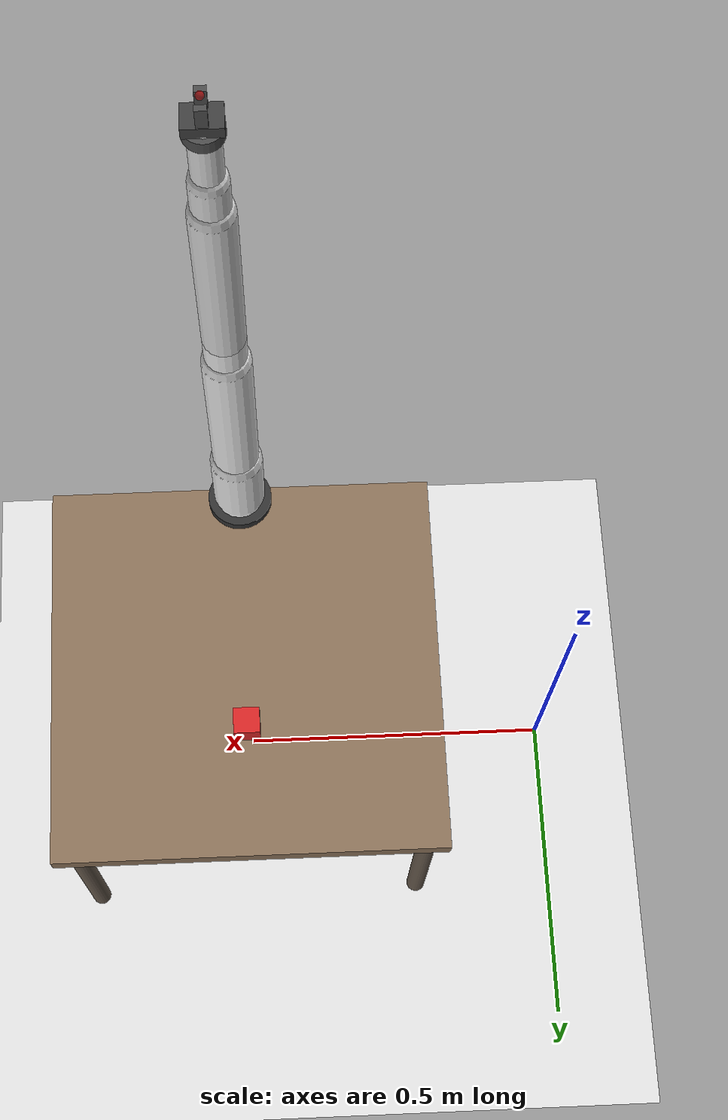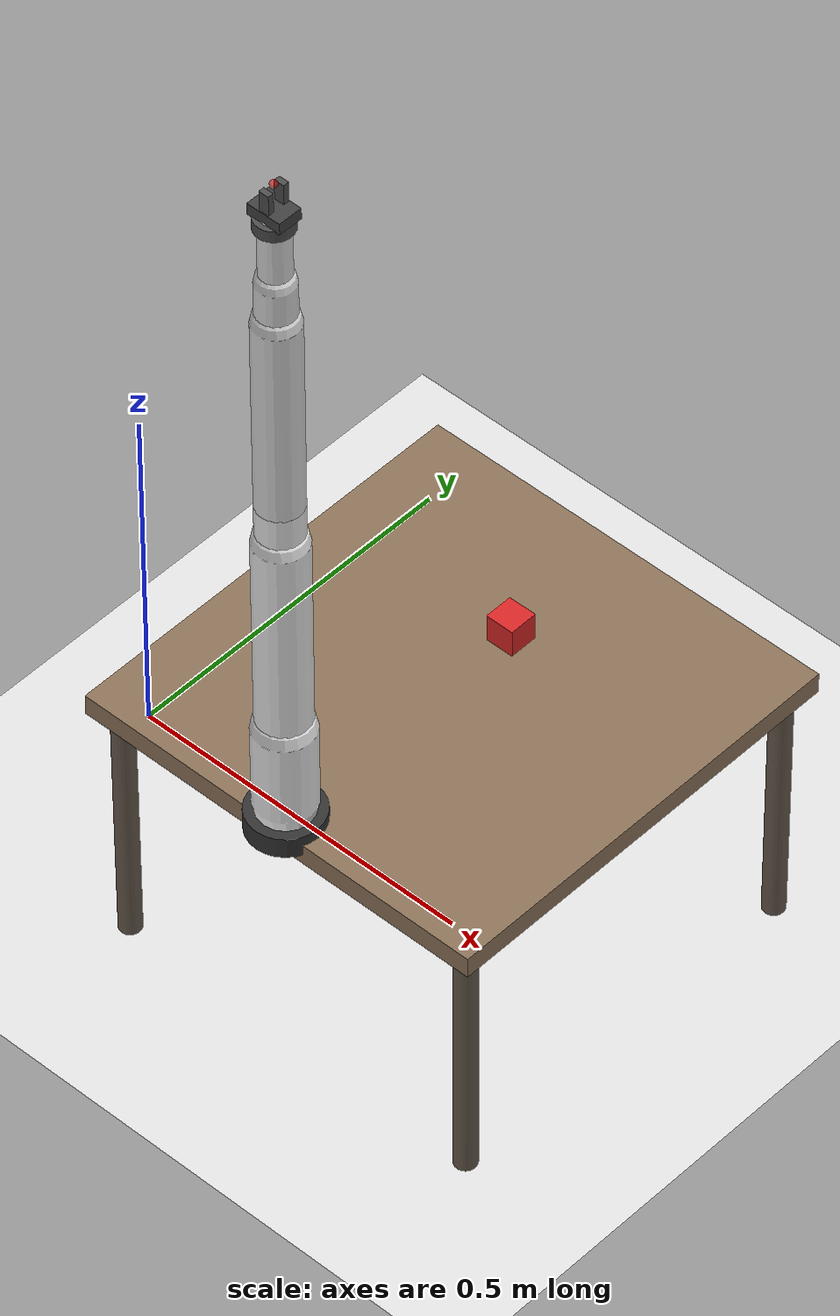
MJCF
<mujoco model="robollm_tabletop">
  <compiler angle="radian" autolimits="true"/>
  <option timestep="0.002" gravity="0 0 -9.81" integrator="implicitfast"/>

  <default>
    <default class="arm">
      <joint damping="10" armature="0.1"/>
      <geom type="capsule" condim="4" friction="1 0.005 0.0001" rgba="0.92 0.92 0.92 1"/>
    </default>
    <default class="finger">
      <joint damping="5" armature="0.01"/>
      <geom type="box" condim="4" friction="1 0.5 0.01" rgba="0.3 0.3 0.3 1"/>
    </default>
    <default class="object">
      <geom condim="4" friction="1 0.5 0.01"
            solimp="0.95 0.95 0.01" solref="0.01 1"/>
    </default>
  </default>

  <asset>
    <texture name="grid" type="2d" builtin="checker"
             rgb1="0.85 0.85 0.85" rgb2="0.92 0.92 0.92"
             width="512" height="512"/>
    <material name="grid" texture="grid" texrepeat="8 8" reflectance="0.05"/>
    <material name="table_mat" rgba="0.55 0.45 0.35 1" specular="0.1"/>
  </asset>

  <worldbody>
    <!-- Lighting -->
    <light pos="0.5 0 1.5" dir="0 0 -1" directional="true" diffuse="0.8 0.8 0.8"/>
    <light pos="0.8 0.5 1.0" diffuse="0.3 0.3 0.3"/>

    <!-- Floor -->
    <geom name="floor" type="plane" size="2 2 0.01" material="grid"/>

    <!-- Table: 60×60 cm, 40 cm tall -->
    <body name="table" pos="0.5 0 0.4">
      <geom name="table_top" type="box" size="0.3 0.3 0.015"
            material="table_mat" mass="20"/>
      <geom name="leg_1" type="cylinder" size="0.015 0.185"
            pos="-0.27 -0.27 -0.2" rgba="0.4 0.35 0.3 1"/>
      <geom name="leg_2" type="cylinder" size="0.015 0.185"
            pos=" 0.27 -0.27 -0.2" rgba="0.4 0.35 0.3 1"/>
      <geom name="leg_3" type="cylinder" size="0.015 0.185"
            pos="-0.27  0.27 -0.2" rgba="0.4 0.35 0.3 1"/>
      <geom name="leg_4" type="cylinder" size="0.015 0.185"
            pos=" 0.27  0.27 -0.2" rgba="0.4 0.35 0.3 1"/>
    </body>

    <body name="arm_base" pos="0.5 -0.28 0.415">
      <geom name="base_mount" type="cylinder" size="0.05 0.015"
            rgba="0.2 0.2 0.2 1" mass="5"/>

      <body name="link1" pos="0 0 0.03" childclass="arm">
        <joint name="j1" type="hinge" axis="0 0 1" range="-2.9 2.9"/>
        <geom fromto="0 0 0 0 0 0.12" size="0.04"/>

        <body name="link2" pos="0 0 0.12">
          <joint name="j2" type="hinge" axis="0 1 0" range="-1.8 1.8"/>
          <geom fromto="0 0 0 0 0 0.30" size="0.035"/>

          <body name="link3" pos="0 0 0.30">
            <joint name="j3" type="hinge" axis="0 0 1" range="-2.9 2.9"/>
            <geom fromto="0 0 0 0 0 0.06" size="0.03"/>

            <body name="link4" pos="0 0 0.06">
              <joint name="j4" type="hinge" axis="0 1 0" range="-3.1 -0.07"/>
              <geom fromto="0 0 0 0 0 0.28" size="0.03"
                    rgba="0.85 0.85 0.85 1"/>

              <body name="link5" pos="0 0 0.28">
                <joint name="j5" type="hinge" axis="0 0 1" range="-2.9 2.9"/>
                <geom fromto="0 0 0 0 0 0.06" size="0.025"
                      rgba="0.85 0.85 0.85 1"/>

                <body name="link6" pos="0 0 0.06">
                  <joint name="j6" type="hinge" axis="0 1 0"
                         range="-0.02 3.75"/>
                  <geom fromto="0 0 0 0 0 0.09" size="0.02"
                        rgba="0.85 0.85 0.85 1"/>

                  <body name="link7" pos="0 0 0.09">
                    <joint name="j7" type="hinge" axis="0 0 1"
                           range="-2.9 2.9"/>
                    <geom type="cylinder" size="0.025 0.008"
                          rgba="0.3 0.3 0.3 1"/>

                    <!-- Gripper -->
                    <body name="gripper_base" pos="0 0 0.015">
                      <geom name="gripper_mount" type="box"
                            size="0.024 0.017 0.008"
                            rgba="0.25 0.25 0.25 1" mass="0.3"/>
                      <!-- End-effector reference point -->
                      <site name="ee_site" pos="0 0 0.04"
                            size="0.005" rgba="1 0 0 0.5"/>

                      <!-- Left finger -->
                      <body name="finger_l" pos="0 -0.012 0.016"
                            childclass="finger">
                        <joint name="finger_l" type="slide"
                               axis="0 -1 0" range="0 0.04"/>
                        <geom name="finger_l_geom"
                              size="0.007 0.004 0.02"/>
                      </body>

                      <!-- Right finger -->
                      <body name="finger_r" pos="0 0.012 0.016"
                            childclass="finger">
                        <joint name="finger_r" type="slide"
                               axis="0 1 0" range="0 0.04"/>
                        <geom name="finger_r_geom"
                              size="0.007 0.004 0.02"/>
                      </body>
                    </body>
                  </body>
                </body>
              </body>
            </body>
          </body>
        </body>
      </body>
    </body>

    <!-- ═══════════════════════════════════════════════════════
         Objects
         ═══════════════════════════════════════════════════════ -->
    <!-- Red block: 4 cm cube, placed on table surface -->
    <body name="block_red" pos="0.5 0.1 0.435">
      <joint name="block_red_free" type="free"/>
      <geom name="block_red_geom" type="box" size="0.02 0.02 0.02"
            rgba="0.85 0.15 0.15 1" mass="0.05" class="object"/>
    </body>

    <!-- ═══════════════════════════════════════════════════════
         Cameras
         ═══════════════════════════════════════════════════════ -->
    <!-- Overhead: looking straight down at table centre -->
    <camera name="overhead" pos="0.5 0 1.2"
            xyaxes="1 0 0 0 1 0" fovy="60"/>
    <!-- Front: looking at table from the front -->
    <camera name="front" pos="0.5 0.9 0.7"
            xyaxes="-1 0 0 0 0.45 1" fovy="50"/>
    <!-- Side: looking from the right -->
    <camera name="side" pos="1.2 0 0.7"
            xyaxes="0 1 0 -0.45 0 1" fovy="50"/>
  </worldbody>

  <!-- ═════════════════════════════════════════════════════════
       Actuators — position-controlled PD for each joint
       ═════════════════════════════════════════════════════════ -->
  <actuator>
    <position name="act_j1" joint="j1" kp="300" ctrlrange="-2.9 2.9"/>
    <position name="act_j2" joint="j2" kp="300" ctrlrange="-1.8 1.8"/>
    <position name="act_j3" joint="j3" kp="200" ctrlrange="-2.9 2.9"/>
    <position name="act_j4" joint="j4" kp="200" ctrlrange="-3.1 -0.07"/>
    <position name="act_j5" joint="j5" kp="100" ctrlrange="-2.9 2.9"/>
    <position name="act_j6" joint="j6" kp="100" ctrlrange="-0.02 3.75"/>
    <position name="act_j7" joint="j7" kp="50"  ctrlrange="-2.9 2.9"/>
    <position name="act_finger_l" joint="finger_l" kp="50"
              ctrlrange="0 0.04"/>
    <position name="act_finger_r" joint="finger_r" kp="50"
              ctrlrange="0 0.04"/>
  </actuator>

  <!-- Home configuration: arm in L-pose above table, fingers half open -->
  <keyframe>
    <key name="home"
         qpos="0 -0.785 0 -2.356 0 1.571 0.785
               0.02 0.02
               0.5 0.1 0.435 1 0 0 0"/>
  </keyframe>
</mujoco>
